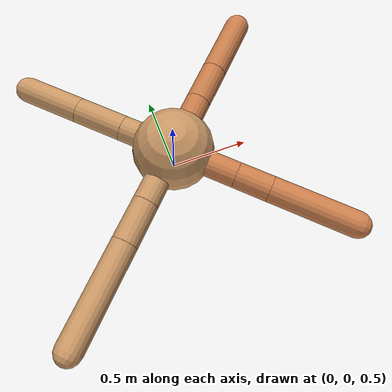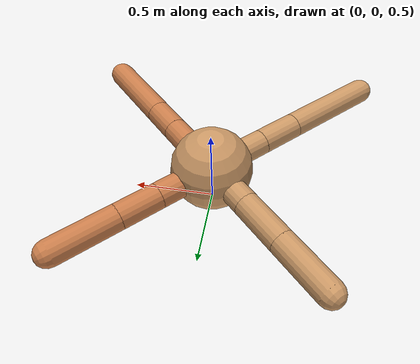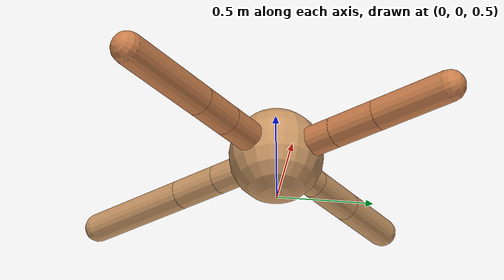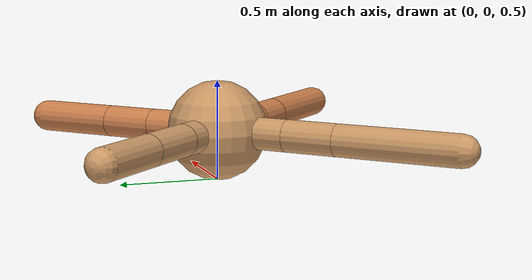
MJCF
<mujoco model="ant">
  <compiler angle="degree" coordinate="local" inertiafromgeom="true" />
  <option integrator="RK4" timestep="0.01" />
  <custom>
    <numeric data="0.0 0.0 0.55 1.0 0.0 0.0 0.0 0.0 1.0 0.0 -1.0 0.0 -1.0 0.0 1.0" name="init_qpos" />
  </custom>
  <default>
    <joint armature="1" damping="1" limited="true" />
    <geom conaffinity="0" condim="3" density="5.0" friction="1.5 0.1 0.1" margin="0.01" rgba="0.8 0.6 0.4 1" />
  </default>
  <worldbody>
    <body name="torso" pos="0 0 0.75">
      <geom name="torso_geom" pos="0 0 0" size="0.25" type="sphere" />

      <body name="front_left_leg" pos="0 0 0">
        <geom fromto="0.0 0.0 0.0 0.2632155785328911 0.2632155785328911 0.0" name="aux_1_geom" size="0.08" type="capsule" rgba=".8 .5 .3 1" />
        <body name="aux_1" pos="0.2632155785328911 0.2632155785328911 0.0">
          <joint axis="0 0 1" name="hip_1" pos="0.0 0.0 0.0" range="-40 40" type="hinge" />
          <geom fromto="0.0 0.0 0.0 0.18103582106896457 0.18103582106896457 0.0" name="left_leg_geom" size="0.08" type="capsule" rgba=".8 .5 .3 1" />
          <body pos="0.18103582106896457 0.18103582106896457 0.0" name="front_left_foot">
            <joint axis="-1 1 0" name="ankle_1" pos="0.0 0.0 0.0" range="30 100" type="hinge" />
            <geom fromto="0.0 0.0 0.0 0.2853871067034942 0.2853871067034942 0.0" name="left_ankle_geom" size="0.08" type="capsule" rgba=".8 .5 .3 1" />
          </body>
        </body>
      </body>
      <body name="front_right_leg" pos="0 0 0">
        <geom fromto="0.0 0.0 0.0 -0.24189939889850962 0.24189939889850962 0.0" name="aux_2_geom" size="0.08" type="capsule" />
        <body name="aux_2" pos="-0.24189939889850962 0.24189939889850962 0.0">
          <joint axis="0 0 1" name="hip_2" pos="0.0 0.0 0.0" range="-40 40" type="hinge" />
          <geom fromto="0.0 0.0 0.0 -0.21925432867127262 0.21925432867127262 0.0" name="right_leg_geom" size="0.08" type="capsule" />
          <body pos="-0.21925432867127262 0.21925432867127262 0.0" name="front_right_foot">
            <joint axis="1 1 0" name="ankle_2" pos="0.0 0.0 0.0" range="-100 -30" type="hinge" />
            <geom fromto="0.0 0.0 0.0 -0.2638992873803203 0.2638992873803203 0.0" name="right_ankle_geom" size="0.08" type="capsule" />
          </body>
        </body>
      </body>
      <body name="left_back_leg" pos="0 0 0">
        <geom fromto="0.0 0.0 0.0 -0.2700263770773334 -0.2700263770773334 0.0" name="aux_3_geom" size="0.08" type="capsule" />
        <body name="aux_3" pos="-0.2700263770773334 -0.2700263770773334 0.0">
          <joint axis="0 0 1" name="hip_3" pos="0.0 0.0 0.0" range="-40 40" type="hinge" />
          <geom fromto="0.0 0.0 0.0 -0.18582031307410754 -0.18582031307410754 0.0" name="back_leg_geom" size="0.08" type="capsule" />
          <body pos="-0.18582031307410754 -0.18582031307410754 0.0" name="left_back_foot">
            <joint axis="-1 1 0" name="ankle_3" pos="0.0 0.0 0.0" range="-100 -30" type="hinge" />
            <geom fromto="0.0 0.0 0.0 -0.43708994050106825 -0.43708994050106825 0.0" name="third_ankle_geom" size="0.08" type="capsule" />
          </body>
        </body>
      </body>
      <body name="right_back_leg" pos="0 0 0">
        <geom fromto="0.0 0.0 0.0 0.29318644682034023 -0.29318644682034023 0.0" name="aux_4_geom" size="0.08" type="capsule" rgba=".8 .5 .3 1" />
        <body name="aux_4" pos="0.29318644682034023 -0.29318644682034023 0.0">
          <joint axis="0 0 1" name="hip_4" pos="0.0 0.0 0.0" range="-40 40" type="hinge" />
          <geom fromto="0.0 0.0 0.0 0.15091228152729141 -0.15091228152729141 0.0" name="rightback_leg_geom" size="0.08" type="capsule" rgba=".8 .5 .3 1" />
          <body pos="0.15091228152729141 -0.15091228152729141 0.0" name="right_back_foot">
            <joint axis="1 1 0" name="ankle_4" pos="0.0 0.0 0.0" range="30 100" type="hinge" />
            <geom fromto="0.0 0.0 0.0 0.3692498881498914 -0.3692498881498914 0.0" name="fourth_ankle_geom" size="0.08" type="capsule" rgba=".8 .5 .3 1" />
          </body>
        </body>
      </body>
    </body>
  </worldbody>
  <actuator>
    <motor ctrllimited="true" ctrlrange="-1.0 1.0" joint="hip_4" gear="150" />
    <motor ctrllimited="true" ctrlrange="-1.0 1.0" joint="ankle_4" gear="150" />
    <motor ctrllimited="true" ctrlrange="-1.0 1.0" joint="hip_1" gear="150" />
    <motor ctrllimited="true" ctrlrange="-1.0 1.0" joint="ankle_1" gear="150" />
    <motor ctrllimited="true" ctrlrange="-1.0 1.0" joint="hip_2" gear="150" />
    <motor ctrllimited="true" ctrlrange="-1.0 1.0" joint="ankle_2" gear="150" />
    <motor ctrllimited="true" ctrlrange="-1.0 1.0" joint="hip_3" gear="150" />
    <motor ctrllimited="true" ctrlrange="-1.0 1.0" joint="ankle_3" gear="150" />
  </actuator>
</mujoco>
